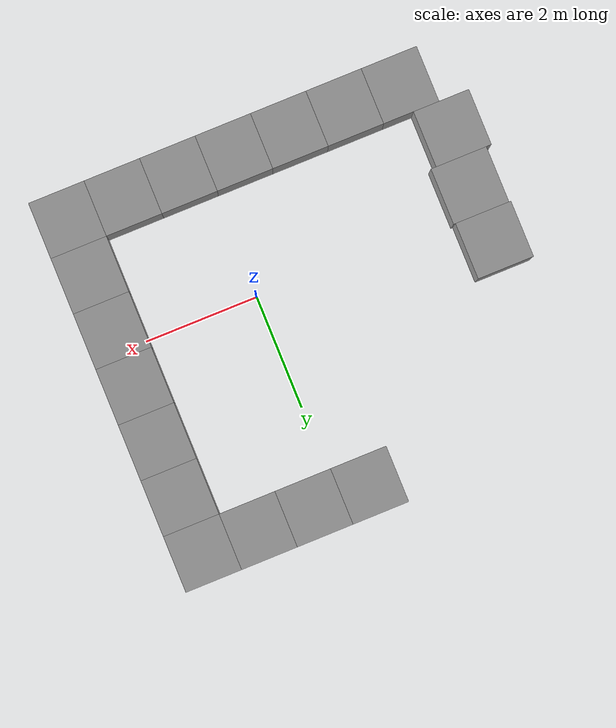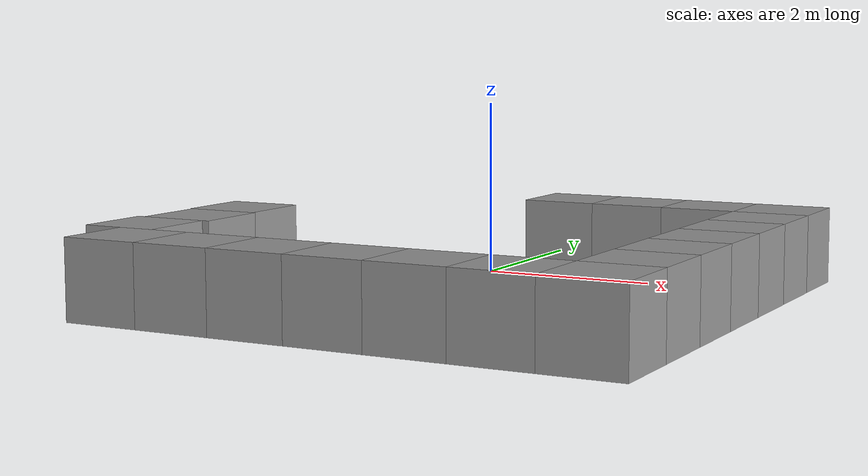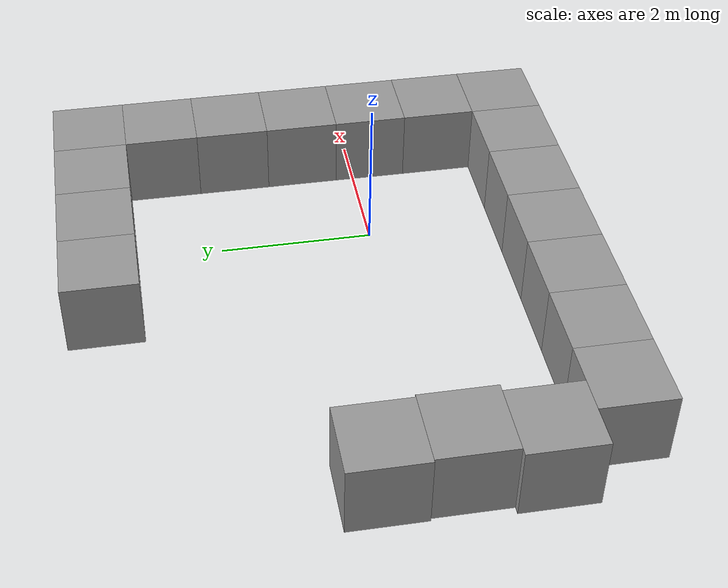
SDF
<?xml version='1.0'?>
<sdf version='1.6'>
  <model name='ai_test'>
    <link name='link_0'>
      <pose frame=''>-4.0317 0.631579 0 0 -0 0</pose>
      <inertial>
        <mass>1</mass>
        <inertia>
          <ixx>0.166667</ixx>
          <ixy>0</ixy>
          <ixz>0</ixz>
          <iyy>0.166667</iyy>
          <iyz>0</iyz>
          <izz>0.166667</izz>
        </inertia>
      </inertial>
      <visual name='visual'>
        <pose frame=''>0 0 0 0 -0 0</pose>
        <geometry>
          <box>
            <size>1 1 1</size>
          </box>
        </geometry>
        <material>
          <lighting>1</lighting>
          <script>
            <uri>file://media/materials/scripts/gazebo.material</uri>
            <name>Gazebo/Grey</name>
          </script>
          <ambient>0.3 0.3 0.3 1</ambient>
          <diffuse>0.7 0.7 0.7 1</diffuse>
          <specular>0.01 0.01 0.01 1</specular>
          <emissive>0 0 0 1</emissive>
        </material>
        <cast_shadows>1</cast_shadows>
        <transparency>0</transparency>
      </visual>
      <collision name='collision'>
        <laser_retro>0</laser_retro>
        <max_contacts>10</max_contacts>
        <pose frame=''>0 0 0 0 -0 0</pose>
        <geometry>
          <box>
            <size>1 1 1</size>
          </box>
        </geometry>
        <surface>
          <friction>
            <ode>
              <mu>1</mu>
              <mu2>1</mu2>
              <fdir1>0 0 0</fdir1>
              <slip1>0</slip1>
              <slip2>0</slip2>
            </ode>
            <torsional>
              <coefficient>1</coefficient>
              <patch_radius>0</patch_radius>
              <surface_radius>0</surface_radius>
              <use_patch_radius>1</use_patch_radius>
              <ode>
                <slip>0</slip>
              </ode>
            </torsional>
          </friction>
          <bounce>
            <restitution_coefficient>0</restitution_coefficient>
            <threshold>1e+06</threshold>
          </bounce>
          <contact>
            <collide_without_contact>0</collide_without_contact>
            <collide_without_contact_bitmask>1</collide_without_contact_bitmask>
            <collide_bitmask>1</collide_bitmask>
            <ode>
              <soft_cfm>0</soft_cfm>
              <soft_erp>0.2</soft_erp>
              <kp>1e+13</kp>
              <kd>1</kd>
              <max_vel>0.01</max_vel>
              <min_depth>0</min_depth>
            </ode>
            <bullet>
              <split_impulse>1</split_impulse>
              <split_impulse_penetration_threshold>-0.01</split_impulse_penetration_threshold>
              <soft_cfm>0</soft_cfm>
              <soft_erp>0.2</soft_erp>
              <kp>1e+13</kp>
              <kd>1</kd>
            </bullet>
          </contact>
        </surface>
      </collision>
    </link>
    <link name='link_1'>
      <pose frame=''>-3.9979 -0.368421 0 0 -0 0</pose>
      <inertial>
        <mass>1</mass>
        <inertia>
          <ixx>0.166667</ixx>
          <ixy>0</ixy>
          <ixz>0</ixz>
          <iyy>0.166667</iyy>
          <iyz>0</iyz>
          <izz>0.166667</izz>
        </inertia>
      </inertial>
      <visual name='visual'>
        <pose frame=''>0 0 0 0 -0 0</pose>
        <geometry>
          <box>
            <size>1 1 1</size>
          </box>
        </geometry>
        <material>
          <lighting>1</lighting>
          <script>
            <uri>file://media/materials/scripts/gazebo.material</uri>
            <name>Gazebo/Grey</name>
          </script>
          <ambient>0.3 0.3 0.3 1</ambient>
          <diffuse>0.7 0.7 0.7 1</diffuse>
          <specular>0.01 0.01 0.01 1</specular>
          <emissive>0 0 0 1</emissive>
        </material>
        <cast_shadows>1</cast_shadows>
        <transparency>0</transparency>
      </visual>
      <collision name='collision'>
        <laser_retro>0</laser_retro>
        <max_contacts>10</max_contacts>
        <pose frame=''>0 0 0 0 -0 0</pose>
        <geometry>
          <box>
            <size>1 1 1</size>
          </box>
        </geometry>
        <surface>
          <friction>
            <ode>
              <mu>1</mu>
              <mu2>1</mu2>
              <fdir1>0 0 0</fdir1>
              <slip1>0</slip1>
              <slip2>0</slip2>
            </ode>
            <torsional>
              <coefficient>1</coefficient>
              <patch_radius>0</patch_radius>
              <surface_radius>0</surface_radius>
              <use_patch_radius>1</use_patch_radius>
              <ode>
                <slip>0</slip>
              </ode>
            </torsional>
          </friction>
          <bounce>
            <restitution_coefficient>0</restitution_coefficient>
            <threshold>1e+06</threshold>
          </bounce>
          <contact>
            <collide_without_contact>0</collide_without_contact>
            <collide_without_contact_bitmask>1</collide_without_contact_bitmask>
            <collide_bitmask>1</collide_bitmask>
            <ode>
              <soft_cfm>0</soft_cfm>
              <soft_erp>0.2</soft_erp>
              <kp>1e+13</kp>
              <kd>1</kd>
              <max_vel>0.01</max_vel>
              <min_depth>0</min_depth>
            </ode>
            <bullet>
              <split_impulse>1</split_impulse>
              <split_impulse_penetration_threshold>-0.01</split_impulse_penetration_threshold>
              <soft_cfm>0</soft_cfm>
              <soft_erp>0.2</soft_erp>
              <kp>1e+13</kp>
              <kd>1</kd>
            </bullet>
          </contact>
        </surface>
      </collision>
    </link>
    <link name='link_10'>
      <pose frame=''>2.44506 1.63158 0 0 -0 0</pose>
      <inertial>
        <mass>1</mass>
        <inertia>
          <ixx>0.166667</ixx>
          <ixy>0</ixy>
          <ixz>0</ixz>
          <iyy>0.166667</iyy>
          <iyz>0</iyz>
          <izz>0.166667</izz>
        </inertia>
      </inertial>
      <visual name='visual'>
        <pose frame=''>0 0 0 0 -0 0</pose>
        <geometry>
          <box>
            <size>1 1 1</size>
          </box>
        </geometry>
        <material>
          <lighting>1</lighting>
          <script>
            <uri>file://media/materials/scripts/gazebo.material</uri>
            <name>Gazebo/Grey</name>
          </script>
          <ambient>0.3 0.3 0.3 1</ambient>
          <diffuse>0.7 0.7 0.7 1</diffuse>
          <specular>0.01 0.01 0.01 1</specular>
          <emissive>0 0 0 1</emissive>
        </material>
        <cast_shadows>1</cast_shadows>
        <transparency>0</transparency>
      </visual>
      <collision name='collision'>
        <laser_retro>0</laser_retro>
        <max_contacts>10</max_contacts>
        <pose frame=''>0 0 0 0 -0 0</pose>
        <geometry>
          <box>
            <size>1 1 1</size>
          </box>
        </geometry>
        <surface>
          <friction>
            <ode>
              <mu>1</mu>
              <mu2>1</mu2>
              <fdir1>0 0 0</fdir1>
              <slip1>0</slip1>
              <slip2>0</slip2>
            </ode>
            <torsional>
              <coefficient>1</coefficient>
              <patch_radius>0</patch_radius>
              <surface_radius>0</surface_radius>
              <use_patch_radius>1</use_patch_radius>
              <ode>
                <slip>0</slip>
              </ode>
            </torsional>
          </friction>
          <bounce>
            <restitution_coefficient>0</restitution_coefficient>
            <threshold>1e+06</threshold>
          </bounce>
          <contact>
            <collide_without_contact>0</collide_without_contact>
            <collide_without_contact_bitmask>1</collide_without_contact_bitmask>
            <collide_bitmask>1</collide_bitmask>
            <ode>
              <soft_cfm>0</soft_cfm>
              <soft_erp>0.2</soft_erp>
              <kp>1e+13</kp>
              <kd>1</kd>
              <max_vel>0.01</max_vel>
              <min_depth>0</min_depth>
            </ode>
            <bullet>
              <split_impulse>1</split_impulse>
              <split_impulse_penetration_threshold>-0.01</split_impulse_penetration_threshold>
              <soft_cfm>0</soft_cfm>
              <soft_erp>0.2</soft_erp>
              <kp>1e+13</kp>
              <kd>1</kd>
            </bullet>
          </contact>
        </surface>
      </collision>
    </link>
    <link name='link_11'>
      <pose frame=''>2.44506 2.63158 0 0 -0 0</pose>
      <inertial>
        <mass>1</mass>
        <inertia>
          <ixx>0.166667</ixx>
          <ixy>0</ixy>
          <ixz>0</ixz>
          <iyy>0.166667</iyy>
          <iyz>0</iyz>
          <izz>0.166667</izz>
        </inertia>
      </inertial>
      <visual name='visual'>
        <pose frame=''>0 0 0 0 -0 0</pose>
        <geometry>
          <box>
            <size>1 1 1</size>
          </box>
        </geometry>
        <material>
          <lighting>1</lighting>
          <script>
            <uri>file://media/materials/scripts/gazebo.material</uri>
            <name>Gazebo/Grey</name>
          </script>
          <ambient>0.3 0.3 0.3 1</ambient>
          <diffuse>0.7 0.7 0.7 1</diffuse>
          <specular>0.01 0.01 0.01 1</specular>
          <emissive>0 0 0 1</emissive>
        </material>
        <cast_shadows>1</cast_shadows>
        <transparency>0</transparency>
      </visual>
      <collision name='collision'>
        <laser_retro>0</laser_retro>
        <max_contacts>10</max_contacts>
        <pose frame=''>0 0 0 0 -0 0</pose>
        <geometry>
          <box>
            <size>1 1 1</size>
          </box>
        </geometry>
        <surface>
          <friction>
            <ode>
              <mu>1</mu>
              <mu2>1</mu2>
              <fdir1>0 0 0</fdir1>
              <slip1>0</slip1>
              <slip2>0</slip2>
            </ode>
            <torsional>
              <coefficient>1</coefficient>
              <patch_radius>0</patch_radius>
              <surface_radius>0</surface_radius>
              <use_patch_radius>1</use_patch_radius>
              <ode>
                <slip>0</slip>
              </ode>
            </torsional>
          </friction>
          <bounce>
            <restitution_coefficient>0</restitution_coefficient>
            <threshold>1e+06</threshold>
          </bounce>
          <contact>
            <collide_without_contact>0</collide_without_contact>
            <collide_without_contact_bitmask>1</collide_without_contact_bitmask>
            <collide_bitmask>1</collide_bitmask>
            <ode>
              <soft_cfm>0</soft_cfm>
              <soft_erp>0.2</soft_erp>
              <kp>1e+13</kp>
              <kd>1</kd>
              <max_vel>0.01</max_vel>
              <min_depth>0</min_depth>
            </ode>
            <bullet>
              <split_impulse>1</split_impulse>
              <split_impulse_penetration_threshold>-0.01</split_impulse_penetration_threshold>
              <soft_cfm>0</soft_cfm>
              <soft_erp>0.2</soft_erp>
              <kp>1e+13</kp>
              <kd>1</kd>
            </bullet>
          </contact>
        </surface>
      </collision>
    </link>
    <link name='link_12'>
      <pose frame=''>2.44506 3.63158 0 0 -0 0</pose>
      <inertial>
        <mass>1</mass>
        <inertia>
          <ixx>0.166667</ixx>
          <ixy>0</ixy>
          <ixz>0</ixz>
          <iyy>0.166667</iyy>
          <iyz>0</iyz>
          <izz>0.166667</izz>
        </inertia>
      </inertial>
      <visual name='visual'>
        <pose frame=''>0 0 0 0 -0 0</pose>
        <geometry>
          <box>
            <size>1 1 1</size>
          </box>
        </geometry>
        <material>
          <lighting>1</lighting>
          <script>
            <uri>file://media/materials/scripts/gazebo.material</uri>
            <name>Gazebo/Grey</name>
          </script>
          <ambient>0.3 0.3 0.3 1</ambient>
          <diffuse>0.7 0.7 0.7 1</diffuse>
          <specular>0.01 0.01 0.01 1</specular>
          <emissive>0 0 0 1</emissive>
        </material>
        <cast_shadows>1</cast_shadows>
        <transparency>0</transparency>
      </visual>
      <collision name='collision'>
        <laser_retro>0</laser_retro>
        <max_contacts>10</max_contacts>
        <pose frame=''>0 0 0 0 -0 0</pose>
        <geometry>
          <box>
            <size>1 1 1</size>
          </box>
        </geometry>
        <surface>
          <friction>
            <ode>
              <mu>1</mu>
              <mu2>1</mu2>
              <fdir1>0 0 0</fdir1>
              <slip1>0</slip1>
              <slip2>0</slip2>
            </ode>
            <torsional>
              <coefficient>1</coefficient>
              <patch_radius>0</patch_radius>
              <surface_radius>0</surface_radius>
              <use_patch_radius>1</use_patch_radius>
              <ode>
                <slip>0</slip>
              </ode>
            </torsional>
          </friction>
          <bounce>
            <restitution_coefficient>0</restitution_coefficient>
            <threshold>1e+06</threshold>
          </bounce>
          <contact>
            <collide_without_contact>0</collide_without_contact>
            <collide_without_contact_bitmask>1</collide_without_contact_bitmask>
            <collide_bitmask>1</collide_bitmask>
            <ode>
              <soft_cfm>0</soft_cfm>
              <soft_erp>0.2</soft_erp>
              <kp>1e+13</kp>
              <kd>1</kd>
              <max_vel>0.01</max_vel>
              <min_depth>0</min_depth>
            </ode>
            <bullet>
              <split_impulse>1</split_impulse>
              <split_impulse_penetration_threshold>-0.01</split_impulse_penetration_threshold>
              <soft_cfm>0</soft_cfm>
              <soft_erp>0.2</soft_erp>
              <kp>1e+13</kp>
              <kd>1</kd>
            </bullet>
          </contact>
        </surface>
      </collision>
    </link>
    <link name='link_13'>
      <pose frame=''>2.44506 0.631579 0 0 -0 0</pose>
      <inertial>
        <mass>1</mass>
        <inertia>
          <ixx>0.166667</ixx>
          <ixy>0</ixy>
          <ixz>0</ixz>
          <iyy>0.166667</iyy>
          <iyz>0</iyz>
          <izz>0.166667</izz>
        </inertia>
      </inertial>
      <visual name='visual'>
        <pose frame=''>0 0 0 0 -0 0</pose>
        <geometry>
          <box>
            <size>1 1 1</size>
          </box>
        </geometry>
        <material>
          <lighting>1</lighting>
          <script>
            <uri>file://media/materials/scripts/gazebo.material</uri>
            <name>Gazebo/Grey</name>
          </script>
          <ambient>0.3 0.3 0.3 1</ambient>
          <diffuse>0.7 0.7 0.7 1</diffuse>
          <specular>0.01 0.01 0.01 1</specular>
          <emissive>0 0 0 1</emissive>
        </material>
        <cast_shadows>1</cast_shadows>
        <transparency>0</transparency>
      </visual>
      <collision name='collision'>
        <laser_retro>0</laser_retro>
        <max_contacts>10</max_contacts>
        <pose frame=''>0 0 0 0 -0 0</pose>
        <geometry>
          <box>
            <size>1 1 1</size>
          </box>
        </geometry>
        <surface>
          <friction>
            <ode>
              <mu>1</mu>
              <mu2>1</mu2>
              <fdir1>0 0 0</fdir1>
              <slip1>0</slip1>
              <slip2>0</slip2>
            </ode>
            <torsional>
              <coefficient>1</coefficient>
              <patch_radius>0</patch_radius>
              <surface_radius>0</surface_radius>
              <use_patch_radius>1</use_patch_radius>
              <ode>
                <slip>0</slip>
              </ode>
            </torsional>
          </friction>
          <bounce>
            <restitution_coefficient>0</restitution_coefficient>
            <threshold>1e+06</threshold>
          </bounce>
          <contact>
            <collide_without_contact>0</collide_without_contact>
            <collide_without_contact_bitmask>1</collide_without_contact_bitmask>
            <collide_bitmask>1</collide_bitmask>
            <ode>
              <soft_cfm>0</soft_cfm>
              <soft_erp>0.2</soft_erp>
              <kp>1e+13</kp>
              <kd>1</kd>
              <max_vel>0.01</max_vel>
              <min_depth>0</min_depth>
            </ode>
            <bullet>
              <split_impulse>1</split_impulse>
              <split_impulse_penetration_threshold>-0.01</split_impulse_penetration_threshold>
              <soft_cfm>0</soft_cfm>
              <soft_erp>0.2</soft_erp>
              <kp>1e+13</kp>
              <kd>1</kd>
            </bullet>
          </contact>
        </surface>
      </collision>
    </link>
    <link name='link_14'>
      <pose frame=''>2.44506 -0.368421 0 0 -0 0</pose>
      <inertial>
        <mass>1</mass>
        <inertia>
          <ixx>0.166667</ixx>
          <ixy>0</ixy>
          <ixz>0</ixz>
          <iyy>0.166667</iyy>
          <iyz>0</iyz>
          <izz>0.166667</izz>
        </inertia>
      </inertial>
      <visual name='visual'>
        <pose frame=''>0 0 0 0 -0 0</pose>
        <geometry>
          <box>
            <size>1 1 1</size>
          </box>
        </geometry>
        <material>
          <lighting>1</lighting>
          <script>
            <uri>file://media/materials/scripts/gazebo.material</uri>
            <name>Gazebo/Grey</name>
          </script>
          <ambient>0.3 0.3 0.3 1</ambient>
          <diffuse>0.7 0.7 0.7 1</diffuse>
          <specular>0.01 0.01 0.01 1</specular>
          <emissive>0 0 0 1</emissive>
        </material>
        <cast_shadows>1</cast_shadows>
        <transparency>0</transparency>
      </visual>
      <collision name='collision'>
        <laser_retro>0</laser_retro>
        <max_contacts>10</max_contacts>
        <pose frame=''>0 0 0 0 -0 0</pose>
        <geometry>
          <box>
            <size>1 1 1</size>
          </box>
        </geometry>
        <surface>
          <friction>
            <ode>
              <mu>1</mu>
              <mu2>1</mu2>
              <fdir1>0 0 0</fdir1>
              <slip1>0</slip1>
              <slip2>0</slip2>
            </ode>
            <torsional>
              <coefficient>1</coefficient>
              <patch_radius>0</patch_radius>
              <surface_radius>0</surface_radius>
              <use_patch_radius>1</use_patch_radius>
              <ode>
                <slip>0</slip>
              </ode>
            </torsional>
          </friction>
          <bounce>
            <restitution_coefficient>0</restitution_coefficient>
            <threshold>1e+06</threshold>
          </bounce>
          <contact>
            <collide_without_contact>0</collide_without_contact>
            <collide_without_contact_bitmask>1</collide_without_contact_bitmask>
            <collide_bitmask>1</collide_bitmask>
            <ode>
              <soft_cfm>0</soft_cfm>
              <soft_erp>0.2</soft_erp>
              <kp>1e+13</kp>
              <kd>1</kd>
              <max_vel>0.01</max_vel>
              <min_depth>0</min_depth>
            </ode>
            <bullet>
              <split_impulse>1</split_impulse>
              <split_impulse_penetration_threshold>-0.01</split_impulse_penetration_threshold>
              <soft_cfm>0</soft_cfm>
              <soft_erp>0.2</soft_erp>
              <kp>1e+13</kp>
              <kd>1</kd>
            </bullet>
          </contact>
        </surface>
      </collision>
    </link>
    <link name='link_15'>
      <pose frame=''>2.44506 -1.36842 0 0 -0 0</pose>
      <inertial>
        <mass>1</mass>
        <inertia>
          <ixx>0.166667</ixx>
          <ixy>0</ixy>
          <ixz>0</ixz>
          <iyy>0.166667</iyy>
          <iyz>0</iyz>
          <izz>0.166667</izz>
        </inertia>
      </inertial>
      <visual name='visual'>
        <pose frame=''>0 0 0 0 -0 0</pose>
        <geometry>
          <box>
            <size>1 1 1</size>
          </box>
        </geometry>
        <material>
          <lighting>1</lighting>
          <script>
            <uri>file://media/materials/scripts/gazebo.material</uri>
            <name>Gazebo/Grey</name>
          </script>
          <ambient>0.3 0.3 0.3 1</ambient>
          <diffuse>0.7 0.7 0.7 1</diffuse>
          <specular>0.01 0.01 0.01 1</specular>
          <emissive>0 0 0 1</emissive>
        </material>
        <cast_shadows>1</cast_shadows>
        <transparency>0</transparency>
      </visual>
      <collision name='collision'>
        <laser_retro>0</laser_retro>
        <max_contacts>10</max_contacts>
        <pose frame=''>0 0 0 0 -0 0</pose>
        <geometry>
          <box>
            <size>1 1 1</size>
          </box>
        </geometry>
        <surface>
          <friction>
            <ode>
              <mu>1</mu>
              <mu2>1</mu2>
              <fdir1>0 0 0</fdir1>
              <slip1>0</slip1>
              <slip2>0</slip2>
            </ode>
            <torsional>
              <coefficient>1</coefficient>
              <patch_radius>0</patch_radius>
              <surface_radius>0</surface_radius>
              <use_patch_radius>1</use_patch_radius>
              <ode>
                <slip>0</slip>
              </ode>
            </torsional>
          </friction>
          <bounce>
            <restitution_coefficient>0</restitution_coefficient>
            <threshold>1e+06</threshold>
          </bounce>
          <contact>
            <collide_without_contact>0</collide_without_contact>
            <collide_without_contact_bitmask>1</collide_without_contact_bitmask>
            <collide_bitmask>1</collide_bitmask>
            <ode>
              <soft_cfm>0</soft_cfm>
              <soft_erp>0.2</soft_erp>
              <kp>1e+13</kp>
              <kd>1</kd>
              <max_vel>0.01</max_vel>
              <min_depth>0</min_depth>
            </ode>
            <bullet>
              <split_impulse>1</split_impulse>
              <split_impulse_penetration_threshold>-0.01</split_impulse_penetration_threshold>
              <soft_cfm>0</soft_cfm>
              <soft_erp>0.2</soft_erp>
              <kp>1e+13</kp>
              <kd>1</kd>
            </bullet>
          </contact>
        </surface>
      </collision>
    </link>
    <link name='link_16'>
      <pose frame=''>2.44506 -2.36842 0 0 -0 0</pose>
      <inertial>
        <mass>1</mass>
        <inertia>
          <ixx>0.166667</ixx>
          <ixy>0</ixy>
          <ixz>0</ixz>
          <iyy>0.166667</iyy>
          <iyz>0</iyz>
          <izz>0.166667</izz>
        </inertia>
      </inertial>
      <visual name='visual'>
        <pose frame=''>0 0 0 0 -0 0</pose>
        <geometry>
          <box>
            <size>1 1 1</size>
          </box>
        </geometry>
        <material>
          <lighting>1</lighting>
          <script>
            <uri>file://media/materials/scripts/gazebo.material</uri>
            <name>Gazebo/Grey</name>
          </script>
          <ambient>0.3 0.3 0.3 1</ambient>
          <diffuse>0.7 0.7 0.7 1</diffuse>
          <specular>0.01 0.01 0.01 1</specular>
          <emissive>0 0 0 1</emissive>
        </material>
        <cast_shadows>1</cast_shadows>
        <transparency>0</transparency>
      </visual>
      <collision name='collision'>
        <laser_retro>0</laser_retro>
        <max_contacts>10</max_contacts>
        <pose frame=''>0 0 0 0 -0 0</pose>
        <geometry>
          <box>
            <size>1 1 1</size>
          </box>
        </geometry>
        <surface>
          <friction>
            <ode>
              <mu>1</mu>
              <mu2>1</mu2>
              <fdir1>0 0 0</fdir1>
              <slip1>0</slip1>
              <slip2>0</slip2>
            </ode>
            <torsional>
              <coefficient>1</coefficient>
              <patch_radius>0</patch_radius>
              <surface_radius>0</surface_radius>
              <use_patch_radius>1</use_patch_radius>
              <ode>
                <slip>0</slip>
              </ode>
            </torsional>
          </friction>
          <bounce>
            <restitution_coefficient>0</restitution_coefficient>
            <threshold>1e+06</threshold>
          </bounce>
          <contact>
            <collide_without_contact>0</collide_without_contact>
            <collide_without_contact_bitmask>1</collide_without_contact_bitmask>
            <collide_bitmask>1</collide_bitmask>
            <ode>
              <soft_cfm>0</soft_cfm>
              <soft_erp>0.2</soft_erp>
              <kp>1e+13</kp>
              <kd>1</kd>
              <max_vel>0.01</max_vel>
              <min_depth>0</min_depth>
            </ode>
            <bullet>
              <split_impulse>1</split_impulse>
              <split_impulse_penetration_threshold>-0.01</split_impulse_penetration_threshold>
              <soft_cfm>0</soft_cfm>
              <soft_erp>0.2</soft_erp>
              <kp>1e+13</kp>
              <kd>1</kd>
            </bullet>
          </contact>
        </surface>
      </collision>
    </link>
    <link name='link_17'>
      <pose frame=''>1.44506 -2.36842 0 0 -0 0</pose>
      <inertial>
        <mass>1</mass>
        <inertia>
          <ixx>0.166667</ixx>
          <ixy>0</ixy>
          <ixz>0</ixz>
          <iyy>0.166667</iyy>
          <iyz>0</iyz>
          <izz>0.166667</izz>
        </inertia>
      </inertial>
      <visual name='visual'>
        <pose frame=''>0 0 0 0 -0 0</pose>
        <geometry>
          <box>
            <size>1 1 1</size>
          </box>
        </geometry>
        <material>
          <lighting>1</lighting>
          <script>
            <uri>file://media/materials/scripts/gazebo.material</uri>
            <name>Gazebo/Grey</name>
          </script>
          <ambient>0.3 0.3 0.3 1</ambient>
          <diffuse>0.7 0.7 0.7 1</diffuse>
          <specular>0.01 0.01 0.01 1</specular>
          <emissive>0 0 0 1</emissive>
        </material>
        <cast_shadows>1</cast_shadows>
        <transparency>0</transparency>
      </visual>
      <collision name='collision'>
        <laser_retro>0</laser_retro>
        <max_contacts>10</max_contacts>
        <pose frame=''>0 0 0 0 -0 0</pose>
        <geometry>
          <box>
            <size>1 1 1</size>
          </box>
        </geometry>
        <surface>
          <friction>
            <ode>
              <mu>1</mu>
              <mu2>1</mu2>
              <fdir1>0 0 0</fdir1>
              <slip1>0</slip1>
              <slip2>0</slip2>
            </ode>
            <torsional>
              <coefficient>1</coefficient>
              <patch_radius>0</patch_radius>
              <surface_radius>0</surface_radius>
              <use_patch_radius>1</use_patch_radius>
              <ode>
                <slip>0</slip>
              </ode>
            </torsional>
          </friction>
          <bounce>
            <restitution_coefficient>0</restitution_coefficient>
            <threshold>1e+06</threshold>
          </bounce>
          <contact>
            <collide_without_contact>0</collide_without_contact>
            <collide_without_contact_bitmask>1</collide_without_contact_bitmask>
            <collide_bitmask>1</collide_bitmask>
            <ode>
              <soft_cfm>0</soft_cfm>
              <soft_erp>0.2</soft_erp>
              <kp>1e+13</kp>
              <kd>1</kd>
              <max_vel>0.01</max_vel>
              <min_depth>0</min_depth>
            </ode>
            <bullet>
              <split_impulse>1</split_impulse>
              <split_impulse_penetration_threshold>-0.01</split_impulse_penetration_threshold>
              <soft_cfm>0</soft_cfm>
              <soft_erp>0.2</soft_erp>
              <kp>1e+13</kp>
              <kd>1</kd>
            </bullet>
          </contact>
        </surface>
      </collision>
    </link>
    <link name='link_18'>
      <pose frame=''>0.445061 -2.36842 0 0 -0 0</pose>
      <inertial>
        <mass>1</mass>
        <inertia>
          <ixx>0.166667</ixx>
          <ixy>0</ixy>
          <ixz>0</ixz>
          <iyy>0.166667</iyy>
          <iyz>0</iyz>
          <izz>0.166667</izz>
        </inertia>
      </inertial>
      <visual name='visual'>
        <pose frame=''>0 0 0 0 -0 0</pose>
        <geometry>
          <box>
            <size>1 1 1</size>
          </box>
        </geometry>
        <material>
          <lighting>1</lighting>
          <script>
            <uri>file://media/materials/scripts/gazebo.material</uri>
            <name>Gazebo/Grey</name>
          </script>
          <ambient>0.3 0.3 0.3 1</ambient>
          <diffuse>0.7 0.7 0.7 1</diffuse>
          <specular>0.01 0.01 0.01 1</specular>
          <emissive>0 0 0 1</emissive>
        </material>
        <cast_shadows>1</cast_shadows>
        <transparency>0</transparency>
      </visual>
      <collision name='collision'>
        <laser_retro>0</laser_retro>
        <max_contacts>10</max_contacts>
        <pose frame=''>0 0 0 0 -0 0</pose>
        <geometry>
          <box>
            <size>1 1 1</size>
          </box>
        </geometry>
        <surface>
          <friction>
            <ode>
              <mu>1</mu>
              <mu2>1</mu2>
              <fdir1>0 0 0</fdir1>
              <slip1>0</slip1>
              <slip2>0</slip2>
            </ode>
            <torsional>
              <coefficient>1</coefficient>
              <patch_radius>0</patch_radius>
              <surface_radius>0</surface_radius>
              <use_patch_radius>1</use_patch_radius>
              <ode>
                <slip>0</slip>
              </ode>
            </torsional>
          </friction>
          <bounce>
            <restitution_coefficient>0</restitution_coefficient>
            <threshold>1e+06</threshold>
          </bounce>
          <contact>
            <collide_without_contact>0</collide_without_contact>
            <collide_without_contact_bitmask>1</collide_without_contact_bitmask>
            <collide_bitmask>1</collide_bitmask>
            <ode>
              <soft_cfm>0</soft_cfm>
              <soft_erp>0.2</soft_erp>
              <kp>1e+13</kp>
              <kd>1</kd>
              <max_vel>0.01</max_vel>
              <min_depth>0</min_depth>
            </ode>
            <bullet>
              <split_impulse>1</split_impulse>
              <split_impulse_penetration_threshold>-0.01</split_impulse_penetration_threshold>
              <soft_cfm>0</soft_cfm>
              <soft_erp>0.2</soft_erp>
              <kp>1e+13</kp>
              <kd>1</kd>
            </bullet>
          </contact>
        </surface>
      </collision>
    </link>
    <link name='link_19'>
      <pose frame=''>-0.554939 -2.36842 0 0 -0 0</pose>
      <inertial>
        <mass>1</mass>
        <inertia>
          <ixx>0.166667</ixx>
          <ixy>0</ixy>
          <ixz>0</ixz>
          <iyy>0.166667</iyy>
          <iyz>0</iyz>
          <izz>0.166667</izz>
        </inertia>
      </inertial>
      <visual name='visual'>
        <pose frame=''>0 0 0 0 -0 0</pose>
        <geometry>
          <box>
            <size>1 1 1</size>
          </box>
        </geometry>
        <material>
          <lighting>1</lighting>
          <script>
            <uri>file://media/materials/scripts/gazebo.material</uri>
            <name>Gazebo/Grey</name>
          </script>
          <ambient>0.3 0.3 0.3 1</ambient>
          <diffuse>0.7 0.7 0.7 1</diffuse>
          <specular>0.01 0.01 0.01 1</specular>
          <emissive>0 0 0 1</emissive>
        </material>
        <cast_shadows>1</cast_shadows>
        <transparency>0</transparency>
      </visual>
      <collision name='collision'>
        <laser_retro>0</laser_retro>
        <max_contacts>10</max_contacts>
        <pose frame=''>0 0 0 0 -0 0</pose>
        <geometry>
          <box>
            <size>1 1 1</size>
          </box>
        </geometry>
        <surface>
          <friction>
            <ode>
              <mu>1</mu>
              <mu2>1</mu2>
              <fdir1>0 0 0</fdir1>
              <slip1>0</slip1>
              <slip2>0</slip2>
            </ode>
            <torsional>
              <coefficient>1</coefficient>
              <patch_radius>0</patch_radius>
              <surface_radius>0</surface_radius>
              <use_patch_radius>1</use_patch_radius>
              <ode>
                <slip>0</slip>
              </ode>
            </torsional>
          </friction>
          <bounce>
            <restitution_coefficient>0</restitution_coefficient>
            <threshold>1e+06</threshold>
          </bounce>
          <contact>
            <collide_without_contact>0</collide_without_contact>
            <collide_without_contact_bitmask>1</collide_without_contact_bitmask>
            <collide_bitmask>1</collide_bitmask>
            <ode>
              <soft_cfm>0</soft_cfm>
              <soft_erp>0.2</soft_erp>
              <kp>1e+13</kp>
              <kd>1</kd>
              <max_vel>0.01</max_vel>
              <min_depth>0</min_depth>
            </ode>
            <bullet>
              <split_impulse>1</split_impulse>
              <split_impulse_penetration_threshold>-0.01</split_impulse_penetration_threshold>
              <soft_cfm>0</soft_cfm>
              <soft_erp>0.2</soft_erp>
              <kp>1e+13</kp>
              <kd>1</kd>
            </bullet>
          </contact>
        </surface>
      </collision>
    </link>
    <link name='link_20'>
      <pose frame=''>-1.55494 -2.36842 0 0 -0 0</pose>
      <inertial>
        <mass>1</mass>
        <inertia>
          <ixx>0.166667</ixx>
          <ixy>0</ixy>
          <ixz>0</ixz>
          <iyy>0.166667</iyy>
          <iyz>0</iyz>
          <izz>0.166667</izz>
        </inertia>
      </inertial>
      <visual name='visual'>
        <pose frame=''>0 0 0 0 -0 0</pose>
        <geometry>
          <box>
            <size>1 1 1</size>
          </box>
        </geometry>
        <material>
          <lighting>1</lighting>
          <script>
            <uri>file://media/materials/scripts/gazebo.material</uri>
            <name>Gazebo/Grey</name>
          </script>
          <ambient>0.3 0.3 0.3 1</ambient>
          <diffuse>0.7 0.7 0.7 1</diffuse>
          <specular>0.01 0.01 0.01 1</specular>
          <emissive>0 0 0 1</emissive>
        </material>
        <cast_shadows>1</cast_shadows>
        <transparency>0</transparency>
      </visual>
      <collision name='collision'>
        <laser_retro>0</laser_retro>
        <max_contacts>10</max_contacts>
        <pose frame=''>0 0 0 0 -0 0</pose>
        <geometry>
          <box>
            <size>1 1 1</size>
          </box>
        </geometry>
        <surface>
          <friction>
            <ode>
              <mu>1</mu>
              <mu2>1</mu2>
              <fdir1>0 0 0</fdir1>
              <slip1>0</slip1>
              <slip2>0</slip2>
            </ode>
            <torsional>
              <coefficient>1</coefficient>
              <patch_radius>0</patch_radius>
              <surface_radius>0</surface_radius>
              <use_patch_radius>1</use_patch_radius>
              <ode>
                <slip>0</slip>
              </ode>
            </torsional>
          </friction>
          <bounce>
            <restitution_coefficient>0</restitution_coefficient>
            <threshold>1e+06</threshold>
          </bounce>
          <contact>
            <collide_without_contact>0</collide_without_contact>
            <collide_without_contact_bitmask>1</collide_without_contact_bitmask>
            <collide_bitmask>1</collide_bitmask>
            <ode>
              <soft_cfm>0</soft_cfm>
              <soft_erp>0.2</soft_erp>
              <kp>1e+13</kp>
              <kd>1</kd>
              <max_vel>0.01</max_vel>
              <min_depth>0</min_depth>
            </ode>
            <bullet>
              <split_impulse>1</split_impulse>
              <split_impulse_penetration_threshold>-0.01</split_impulse_penetration_threshold>
              <soft_cfm>0</soft_cfm>
              <soft_erp>0.2</soft_erp>
              <kp>1e+13</kp>
              <kd>1</kd>
            </bullet>
          </contact>
        </surface>
      </collision>
    </link>
    <link name='link_21'>
      <pose frame=''>-2.55494 -2.36842 0 0 -0 0</pose>
      <inertial>
        <mass>1</mass>
        <inertia>
          <ixx>0.166667</ixx>
          <ixy>0</ixy>
          <ixz>0</ixz>
          <iyy>0.166667</iyy>
          <iyz>0</iyz>
          <izz>0.166667</izz>
        </inertia>
      </inertial>
      <visual name='visual'>
        <pose frame=''>0 0 0 0 -0 0</pose>
        <geometry>
          <box>
            <size>1 1 1</size>
          </box>
        </geometry>
        <material>
          <lighting>1</lighting>
          <script>
            <uri>file://media/materials/scripts/gazebo.material</uri>
            <name>Gazebo/Grey</name>
          </script>
          <ambient>0.3 0.3 0.3 1</ambient>
          <diffuse>0.7 0.7 0.7 1</diffuse>
          <specular>0.01 0.01 0.01 1</specular>
          <emissive>0 0 0 1</emissive>
        </material>
        <cast_shadows>1</cast_shadows>
        <transparency>0</transparency>
      </visual>
      <collision name='collision'>
        <laser_retro>0</laser_retro>
        <max_contacts>10</max_contacts>
        <pose frame=''>0 0 0 0 -0 0</pose>
        <geometry>
          <box>
            <size>1 1 1</size>
          </box>
        </geometry>
        <surface>
          <friction>
            <ode>
              <mu>1</mu>
              <mu2>1</mu2>
              <fdir1>0 0 0</fdir1>
              <slip1>0</slip1>
              <slip2>0</slip2>
            </ode>
            <torsional>
              <coefficient>1</coefficient>
              <patch_radius>0</patch_radius>
              <surface_radius>0</surface_radius>
              <use_patch_radius>1</use_patch_radius>
              <ode>
                <slip>0</slip>
              </ode>
            </torsional>
          </friction>
          <bounce>
            <restitution_coefficient>0</restitution_coefficient>
            <threshold>1e+06</threshold>
          </bounce>
          <contact>
            <collide_without_contact>0</collide_without_contact>
            <collide_without_contact_bitmask>1</collide_without_contact_bitmask>
            <collide_bitmask>1</collide_bitmask>
            <ode>
              <soft_cfm>0</soft_cfm>
              <soft_erp>0.2</soft_erp>
              <kp>1e+13</kp>
              <kd>1</kd>
              <max_vel>0.01</max_vel>
              <min_depth>0</min_depth>
            </ode>
            <bullet>
              <split_impulse>1</split_impulse>
              <split_impulse_penetration_threshold>-0.01</split_impulse_penetration_threshold>
              <soft_cfm>0</soft_cfm>
              <soft_erp>0.2</soft_erp>
              <kp>1e+13</kp>
              <kd>1</kd>
            </bullet>
          </contact>
        </surface>
      </collision>
    </link>
    <link name='link_4'>
      <pose frame=''>-0.554939 3.63158 0 0 -0 0</pose>
      <inertial>
        <mass>1</mass>
        <inertia>
          <ixx>0.166667</ixx>
          <ixy>0</ixy>
          <ixz>0</ixz>
          <iyy>0.166667</iyy>
          <iyz>0</iyz>
          <izz>0.166667</izz>
        </inertia>
      </inertial>
      <visual name='visual'>
        <pose frame=''>0 0 0 0 -0 0</pose>
        <geometry>
          <box>
            <size>1 1 1</size>
          </box>
        </geometry>
        <material>
          <lighting>1</lighting>
          <script>
            <uri>file://media/materials/scripts/gazebo.material</uri>
            <name>Gazebo/Grey</name>
          </script>
          <ambient>0.3 0.3 0.3 1</ambient>
          <diffuse>0.7 0.7 0.7 1</diffuse>
          <specular>0.01 0.01 0.01 1</specular>
          <emissive>0 0 0 1</emissive>
        </material>
        <cast_shadows>1</cast_shadows>
        <transparency>0</transparency>
      </visual>
      <collision name='collision'>
        <laser_retro>0</laser_retro>
        <max_contacts>10</max_contacts>
        <pose frame=''>0 0 0 0 -0 0</pose>
        <geometry>
          <box>
            <size>1 1 1</size>
          </box>
        </geometry>
        <surface>
          <friction>
            <ode>
              <mu>1</mu>
              <mu2>1</mu2>
              <fdir1>0 0 0</fdir1>
              <slip1>0</slip1>
              <slip2>0</slip2>
            </ode>
            <torsional>
              <coefficient>1</coefficient>
              <patch_radius>0</patch_radius>
              <surface_radius>0</surface_radius>
              <use_patch_radius>1</use_patch_radius>
              <ode>
                <slip>0</slip>
              </ode>
            </torsional>
          </friction>
          <bounce>
            <restitution_coefficient>0</restitution_coefficient>
            <threshold>1e+06</threshold>
          </bounce>
          <contact>
            <collide_without_contact>0</collide_without_contact>
            <collide_without_contact_bitmask>1</collide_without_contact_bitmask>
            <collide_bitmask>1</collide_bitmask>
            <ode>
              <soft_cfm>0</soft_cfm>
              <soft_erp>0.2</soft_erp>
              <kp>1e+13</kp>
              <kd>1</kd>
              <max_vel>0.01</max_vel>
              <min_depth>0</min_depth>
            </ode>
            <bullet>
              <split_impulse>1</split_impulse>
              <split_impulse_penetration_threshold>-0.01</split_impulse_penetration_threshold>
              <soft_cfm>0</soft_cfm>
              <soft_erp>0.2</soft_erp>
              <kp>1e+13</kp>
              <kd>1</kd>
            </bullet>
          </contact>
        </surface>
      </collision>
    </link>
    <link name='link_5'>
      <pose frame=''>0.445061 3.63158 0 0 -0 0</pose>
      <inertial>
        <mass>1</mass>
        <inertia>
          <ixx>0.166667</ixx>
          <ixy>0</ixy>
          <ixz>0</ixz>
          <iyy>0.166667</iyy>
          <iyz>0</iyz>
          <izz>0.166667</izz>
        </inertia>
      </inertial>
      <visual name='visual'>
        <pose frame=''>0 0 0 0 -0 0</pose>
        <geometry>
          <box>
            <size>1 1 1</size>
          </box>
        </geometry>
        <material>
          <lighting>1</lighting>
          <script>
            <uri>file://media/materials/scripts/gazebo.material</uri>
            <name>Gazebo/Grey</name>
          </script>
          <ambient>0.3 0.3 0.3 1</ambient>
          <diffuse>0.7 0.7 0.7 1</diffuse>
          <specular>0.01 0.01 0.01 1</specular>
          <emissive>0 0 0 1</emissive>
        </material>
        <cast_shadows>1</cast_shadows>
        <transparency>0</transparency>
      </visual>
      <collision name='collision'>
        <laser_retro>0</laser_retro>
        <max_contacts>10</max_contacts>
        <pose frame=''>0 0 0 0 -0 0</pose>
        <geometry>
          <box>
            <size>1 1 1</size>
          </box>
        </geometry>
        <surface>
          <friction>
            <ode>
              <mu>1</mu>
              <mu2>1</mu2>
              <fdir1>0 0 0</fdir1>
              <slip1>0</slip1>
              <slip2>0</slip2>
            </ode>
            <torsional>
              <coefficient>1</coefficient>
              <patch_radius>0</patch_radius>
              <surface_radius>0</surface_radius>
              <use_patch_radius>1</use_patch_radius>
              <ode>
                <slip>0</slip>
              </ode>
            </torsional>
          </friction>
          <bounce>
            <restitution_coefficient>0</restitution_coefficient>
            <threshold>1e+06</threshold>
          </bounce>
          <contact>
            <collide_without_contact>0</collide_without_contact>
            <collide_without_contact_bitmask>1</collide_without_contact_bitmask>
            <collide_bitmask>1</collide_bitmask>
            <ode>
              <soft_cfm>0</soft_cfm>
              <soft_erp>0.2</soft_erp>
              <kp>1e+13</kp>
              <kd>1</kd>
              <max_vel>0.01</max_vel>
              <min_depth>0</min_depth>
            </ode>
            <bullet>
              <split_impulse>1</split_impulse>
              <split_impulse_penetration_threshold>-0.01</split_impulse_penetration_threshold>
              <soft_cfm>0</soft_cfm>
              <soft_erp>0.2</soft_erp>
              <kp>1e+13</kp>
              <kd>1</kd>
            </bullet>
          </contact>
        </surface>
      </collision>
    </link>
    <link name='link_6'>
      <pose frame=''>-4.09137 -1.36842 0 0 -0 0</pose>
      <inertial>
        <mass>1</mass>
        <inertia>
          <ixx>0.166667</ixx>
          <ixy>0</ixy>
          <ixz>0</ixz>
          <iyy>0.166667</iyy>
          <iyz>0</iyz>
          <izz>0.166667</izz>
        </inertia>
      </inertial>
      <visual name='visual'>
        <pose frame=''>0 0 0 0 -0 0</pose>
        <geometry>
          <box>
            <size>1 1 1</size>
          </box>
        </geometry>
        <material>
          <lighting>1</lighting>
          <script>
            <uri>file://media/materials/scripts/gazebo.material</uri>
            <name>Gazebo/Grey</name>
          </script>
          <ambient>0.3 0.3 0.3 1</ambient>
          <diffuse>0.7 0.7 0.7 1</diffuse>
          <specular>0.01 0.01 0.01 1</specular>
          <emissive>0 0 0 1</emissive>
        </material>
        <cast_shadows>1</cast_shadows>
        <transparency>0</transparency>
      </visual>
      <collision name='collision'>
        <laser_retro>0</laser_retro>
        <max_contacts>10</max_contacts>
        <pose frame=''>0 0 0 0 -0 0</pose>
        <geometry>
          <box>
            <size>1 1 1</size>
          </box>
        </geometry>
        <surface>
          <friction>
            <ode>
              <mu>1</mu>
              <mu2>1</mu2>
              <fdir1>0 0 0</fdir1>
              <slip1>0</slip1>
              <slip2>0</slip2>
            </ode>
            <torsional>
              <coefficient>1</coefficient>
              <patch_radius>0</patch_radius>
              <surface_radius>0</surface_radius>
              <use_patch_radius>1</use_patch_radius>
              <ode>
                <slip>0</slip>
              </ode>
            </torsional>
          </friction>
          <bounce>
            <restitution_coefficient>0</restitution_coefficient>
            <threshold>1e+06</threshold>
          </bounce>
          <contact>
            <collide_without_contact>0</collide_without_contact>
            <collide_without_contact_bitmask>1</collide_without_contact_bitmask>
            <collide_bitmask>1</collide_bitmask>
            <ode>
              <soft_cfm>0</soft_cfm>
              <soft_erp>0.2</soft_erp>
              <kp>1e+13</kp>
              <kd>1</kd>
              <max_vel>0.01</max_vel>
              <min_depth>0</min_depth>
            </ode>
            <bullet>
              <split_impulse>1</split_impulse>
              <split_impulse_penetration_threshold>-0.01</split_impulse_penetration_threshold>
              <soft_cfm>0</soft_cfm>
              <soft_erp>0.2</soft_erp>
              <kp>1e+13</kp>
              <kd>1</kd>
            </bullet>
          </contact>
        </surface>
      </collision>
    </link>
    <link name='link_7'>
      <pose frame=''>-3.55494 -2.36842 0 0 -0 0</pose>
      <inertial>
        <mass>1</mass>
        <inertia>
          <ixx>0.166667</ixx>
          <ixy>0</ixy>
          <ixz>0</ixz>
          <iyy>0.166667</iyy>
          <iyz>0</iyz>
          <izz>0.166667</izz>
        </inertia>
      </inertial>
      <visual name='visual'>
        <pose frame=''>0 0 0 0 -0 0</pose>
        <geometry>
          <box>
            <size>1 1 1</size>
          </box>
        </geometry>
        <material>
          <lighting>1</lighting>
          <script>
            <uri>file://media/materials/scripts/gazebo.material</uri>
            <name>Gazebo/Grey</name>
          </script>
          <ambient>0.3 0.3 0.3 1</ambient>
          <diffuse>0.7 0.7 0.7 1</diffuse>
          <specular>0.01 0.01 0.01 1</specular>
          <emissive>0 0 0 1</emissive>
        </material>
        <cast_shadows>1</cast_shadows>
        <transparency>0</transparency>
      </visual>
      <collision name='collision'>
        <laser_retro>0</laser_retro>
        <max_contacts>10</max_contacts>
        <pose frame=''>0 0 0 0 -0 0</pose>
        <geometry>
          <box>
            <size>1 1 1</size>
          </box>
        </geometry>
        <surface>
          <friction>
            <ode>
              <mu>1</mu>
              <mu2>1</mu2>
              <fdir1>0 0 0</fdir1>
              <slip1>0</slip1>
              <slip2>0</slip2>
            </ode>
            <torsional>
              <coefficient>1</coefficient>
              <patch_radius>0</patch_radius>
              <surface_radius>0</surface_radius>
              <use_patch_radius>1</use_patch_radius>
              <ode>
                <slip>0</slip>
              </ode>
            </torsional>
          </friction>
          <bounce>
            <restitution_coefficient>0</restitution_coefficient>
            <threshold>1e+06</threshold>
          </bounce>
          <contact>
            <collide_without_contact>0</collide_without_contact>
            <collide_without_contact_bitmask>1</collide_without_contact_bitmask>
            <collide_bitmask>1</collide_bitmask>
            <ode>
              <soft_cfm>0</soft_cfm>
              <soft_erp>0.2</soft_erp>
              <kp>1e+13</kp>
              <kd>1</kd>
              <max_vel>0.01</max_vel>
              <min_depth>0</min_depth>
            </ode>
            <bullet>
              <split_impulse>1</split_impulse>
              <split_impulse_penetration_threshold>-0.01</split_impulse_penetration_threshold>
              <soft_cfm>0</soft_cfm>
              <soft_erp>0.2</soft_erp>
              <kp>1e+13</kp>
              <kd>1</kd>
            </bullet>
          </contact>
        </surface>
      </collision>
    </link>
    <link name='link_8'>
      <pose frame=''>1.44506 3.63158 0 0 -0 0</pose>
      <inertial>
        <mass>1</mass>
        <inertia>
          <ixx>0.166667</ixx>
          <ixy>0</ixy>
          <ixz>0</ixz>
          <iyy>0.166667</iyy>
          <iyz>0</iyz>
          <izz>0.166667</izz>
        </inertia>
      </inertial>
      <visual name='visual'>
        <pose frame=''>0 0 0 0 -0 0</pose>
        <geometry>
          <box>
            <size>1 1 1</size>
          </box>
        </geometry>
        <material>
          <lighting>1</lighting>
          <script>
            <uri>file://media/materials/scripts/gazebo.material</uri>
            <name>Gazebo/Grey</name>
          </script>
          <ambient>0.3 0.3 0.3 1</ambient>
          <diffuse>0.7 0.7 0.7 1</diffuse>
          <specular>0.01 0.01 0.01 1</specular>
          <emissive>0 0 0 1</emissive>
        </material>
        <cast_shadows>1</cast_shadows>
        <transparency>0</transparency>
      </visual>
      <collision name='collision'>
        <laser_retro>0</laser_retro>
        <max_contacts>10</max_contacts>
        <pose frame=''>0 0 0 0 -0 0</pose>
        <geometry>
          <box>
            <size>1 1 1</size>
          </box>
        </geometry>
        <surface>
          <friction>
            <ode>
              <mu>1</mu>
              <mu2>1</mu2>
              <fdir1>0 0 0</fdir1>
              <slip1>0</slip1>
              <slip2>0</slip2>
            </ode>
            <torsional>
              <coefficient>1</coefficient>
              <patch_radius>0</patch_radius>
              <surface_radius>0</surface_radius>
              <use_patch_radius>1</use_patch_radius>
              <ode>
                <slip>0</slip>
              </ode>
            </torsional>
          </friction>
          <bounce>
            <restitution_coefficient>0</restitution_coefficient>
            <threshold>1e+06</threshold>
          </bounce>
          <contact>
            <collide_without_contact>0</collide_without_contact>
            <collide_without_contact_bitmask>1</collide_without_contact_bitmask>
            <collide_bitmask>1</collide_bitmask>
            <ode>
              <soft_cfm>0</soft_cfm>
              <soft_erp>0.2</soft_erp>
              <kp>1e+13</kp>
              <kd>1</kd>
              <max_vel>0.01</max_vel>
              <min_depth>0</min_depth>
            </ode>
            <bullet>
              <split_impulse>1</split_impulse>
              <split_impulse_penetration_threshold>-0.01</split_impulse_penetration_threshold>
              <soft_cfm>0</soft_cfm>
              <soft_erp>0.2</soft_erp>
              <kp>1e+13</kp>
              <kd>1</kd>
            </bullet>
          </contact>
        </surface>
      </collision>
    </link>
    <static>0</static>
    <allow_auto_disable>1</allow_auto_disable>
  </model>
</sdf>
